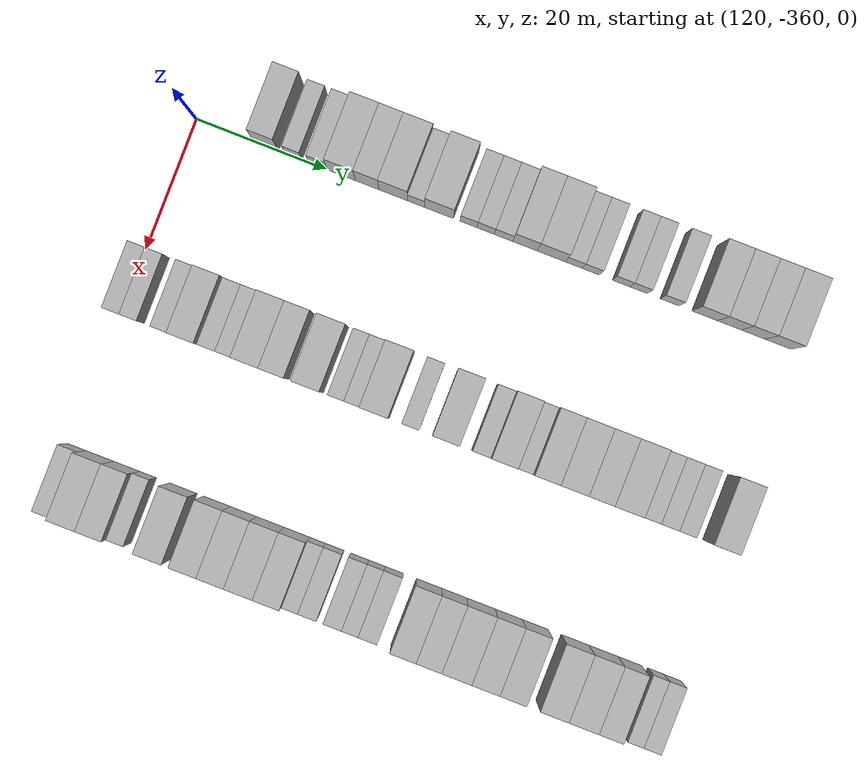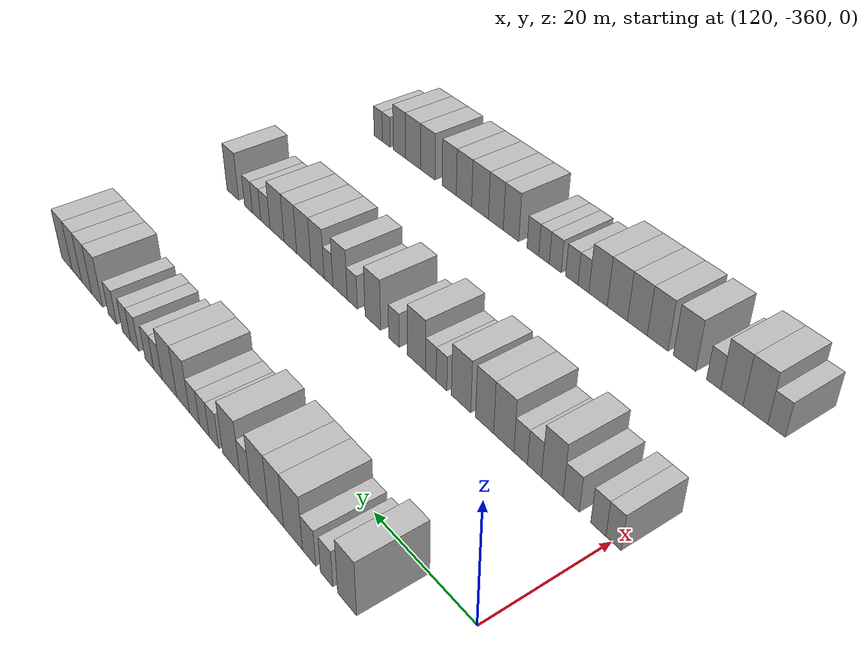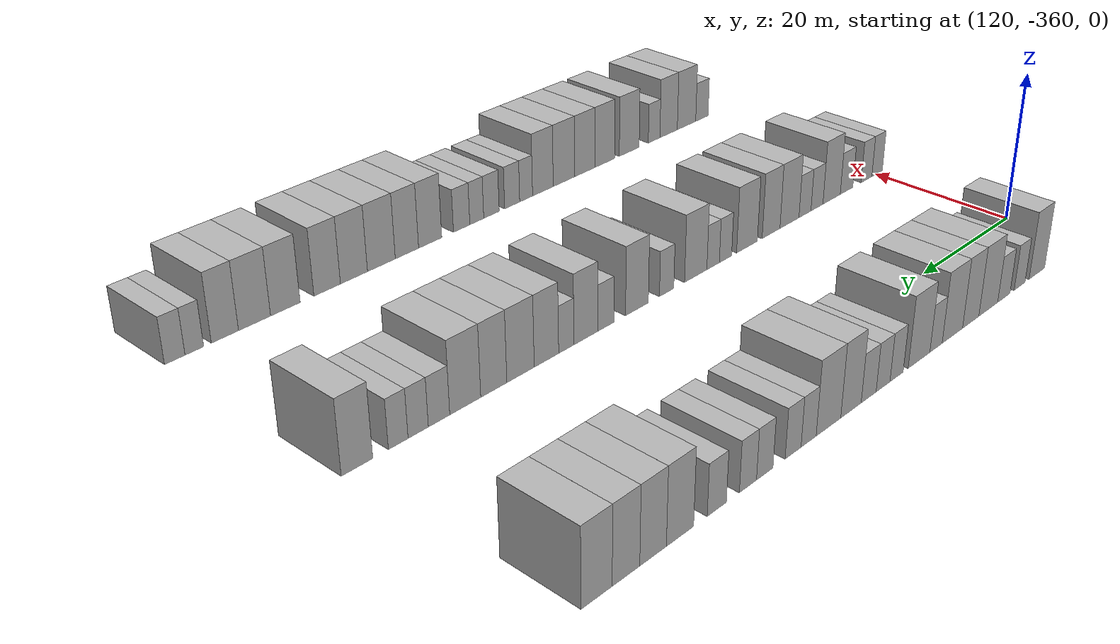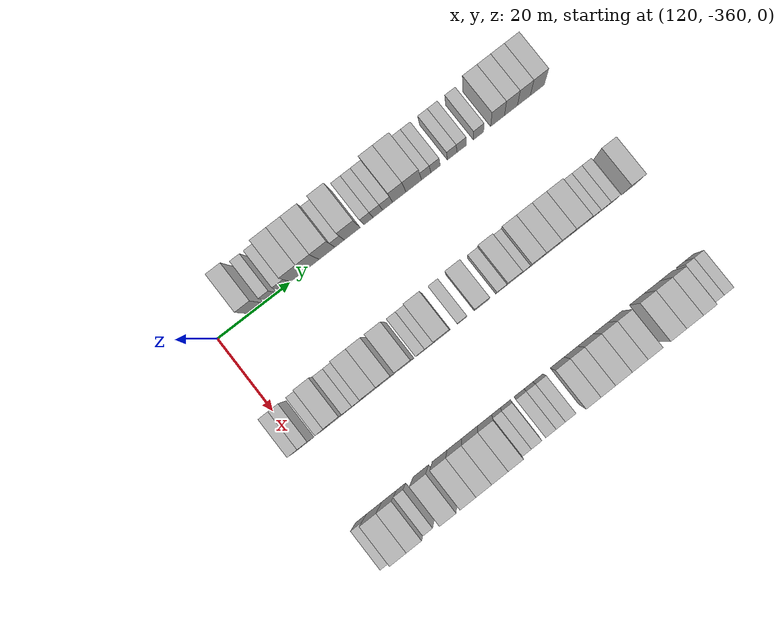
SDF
<sdf version="1.6">
 <world name="default">
  <model name="building_713">
   <static>1</static>
   <pose>115.0000 -349.2718 0 0.000000 0.000000 0.000000</pose>
   <link name="link">
    <pose>0 0 4.50 0 0 0</pose>
    <collision name="collision"><geometry><box><size>10.0000 3.8487 9.0000</size></box></geometry></collision>
    <visual name="visual">
     <cast_shadows>0</cast_shadows>
     <geometry><box><size>10.0000 3.8487 9.0000</size></box></geometry>
     <material>
      <script>
       <uri>model://HANNAS_wall/materials/scripts</uri>
       <uri>model://HANNAS_wall/materials/textures</uri>
       <name>vrc/HANNAS_wall</name>
      </script>
     </material>
    </visual>
   </link>
  </model>
  <model name="building_714">
   <static>1</static>
   <pose>115.0000 -345.0325 0 0.000000 0.000000 0.000000</pose>
   <link name="link">
    <pose>0 0 3.00 0 0 0</pose>
    <collision name="collision"><geometry><box><size>10.0000 2.6299 6.0000</size></box></geometry></collision>
    <visual name="visual">
     <cast_shadows>0</cast_shadows>
     <geometry><box><size>10.0000 2.6299 6.0000</size></box></geometry>
     <material>
      <script>
       <uri>model://HANNAS_wall/materials/scripts</uri>
       <uri>model://HANNAS_wall/materials/textures</uri>
       <name>vrc/HANNAS_wall</name>
      </script>
     </material>
    </visual>
   </link>
  </model>
  <model name="building_715">
   <static>1</static>
   <pose>115.0000 -341.2757 0 0.000000 0.000000 0.000000</pose>
   <link name="link">
    <pose>0 0 3.00 0 0 0</pose>
    <collision name="collision"><geometry><box><size>10.0000 2.8836 6.0000</size></box></geometry></collision>
    <visual name="visual">
     <cast_shadows>0</cast_shadows>
     <geometry><box><size>10.0000 2.8836 6.0000</size></box></geometry>
     <material>
      <script>
       <uri>model://HANNAS_wall/materials/scripts</uri>
       <uri>model://HANNAS_wall/materials/textures</uri>
       <name>vrc/HANNAS_wall</name>
      </script>
     </material>
    </visual>
   </link>
  </model>
  <model name="building_716">
   <static>1</static>
   <pose>115.0000 -337.6735 0 0.000000 0.000000 0.000000</pose>
   <link name="link">
    <pose>0 0 4.50 0 0 0</pose>
    <collision name="collision"><geometry><box><size>10.0000 4.3208 9.0000</size></box></geometry></collision>
    <visual name="visual">
     <cast_shadows>0</cast_shadows>
     <geometry><box><size>10.0000 4.3208 9.0000</size></box></geometry>
     <material>
      <script>
       <uri>model://HANNAS_wall/materials/scripts</uri>
       <uri>model://HANNAS_wall/materials/textures</uri>
       <name>vrc/HANNAS_wall</name>
      </script>
     </material>
    </visual>
   </link>
  </model>
  <model name="building_717">
   <static>1</static>
   <pose>115.0000 -333.7056 0 0.000000 0.000000 0.000000</pose>
   <link name="link">
    <pose>0 0 4.50 0 0 0</pose>
    <collision name="collision"><geometry><box><size>10.0000 3.6150 9.0000</size></box></geometry></collision>
    <visual name="visual">
     <cast_shadows>0</cast_shadows>
     <geometry><box><size>10.0000 3.6150 9.0000</size></box></geometry>
     <material>
      <script>
       <uri>model://HANNAS_wall/materials/scripts</uri>
       <uri>model://HANNAS_wall/materials/textures</uri>
       <name>vrc/HANNAS_wall</name>
      </script>
     </material>
    </visual>
   </link>
  </model>
  <model name="building_718">
   <static>1</static>
   <pose>115.0000 -329.7016 0 0.000000 0.000000 0.000000</pose>
   <link name="link">
    <pose>0 0 4.50 0 0 0</pose>
    <collision name="collision"><geometry><box><size>10.0000 4.3929 9.0000</size></box></geometry></collision>
    <visual name="visual">
     <cast_shadows>0</cast_shadows>
     <geometry><box><size>10.0000 4.3929 9.0000</size></box></geometry>
     <material>
      <script>
       <uri>model://HANNAS_wall/materials/scripts</uri>
       <uri>model://HANNAS_wall/materials/textures</uri>
       <name>vrc/HANNAS_wall</name>
      </script>
     </material>
    </visual>
   </link>
  </model>
  <model name="building_719">
   <static>1</static>
   <pose>115.0000 -326.2116 0 0.000000 0.000000 0.000000</pose>
   <link name="link">
    <pose>0 0 3.00 0 0 0</pose>
    <collision name="collision"><geometry><box><size>10.0000 2.5870 6.0000</size></box></geometry></collision>
    <visual name="visual">
     <cast_shadows>0</cast_shadows>
     <geometry><box><size>10.0000 2.5870 6.0000</size></box></geometry>
     <material>
      <script>
       <uri>model://HANNAS_wall/materials/scripts</uri>
       <uri>model://HANNAS_wall/materials/textures</uri>
       <name>vrc/HANNAS_wall</name>
      </script>
     </material>
    </visual>
   </link>
  </model>
  <model name="building_720">
   <static>1</static>
   <pose>115.0000 -322.7113 0 0.000000 0.000000 0.000000</pose>
   <link name="link">
    <pose>0 0 4.50 0 0 0</pose>
    <collision name="collision"><geometry><box><size>10.0000 4.4137 9.0000</size></box></geometry></collision>
    <visual name="visual">
     <cast_shadows>0</cast_shadows>
     <geometry><box><size>10.0000 4.4137 9.0000</size></box></geometry>
     <material>
      <script>
       <uri>model://HANNAS_wall/materials/scripts</uri>
       <uri>model://HANNAS_wall/materials/textures</uri>
       <name>vrc/HANNAS_wall</name>
      </script>
     </material>
    </visual>
   </link>
  </model>
  <model name="building_721">
   <static>1</static>
   <pose>115.0000 -318.2077 0 0.000000 0.000000 0.000000</pose>
   <link name="link">
    <pose>0 0 3.00 0 0 0</pose>
    <collision name="collision"><geometry><box><size>10.0000 2.5934 6.0000</size></box></geometry></collision>
    <visual name="visual">
     <cast_shadows>0</cast_shadows>
     <geometry><box><size>10.0000 2.5934 6.0000</size></box></geometry>
     <material>
      <script>
       <uri>model://HANNAS_wall/materials/scripts</uri>
       <uri>model://HANNAS_wall/materials/textures</uri>
       <name>vrc/HANNAS_wall</name>
      </script>
     </material>
    </visual>
   </link>
  </model>
  <model name="building_722">
   <static>1</static>
   <pose>115.0000 -315.5808 0 0.000000 0.000000 0.000000</pose>
   <link name="link">
    <pose>0 0 3.00 0 0 0</pose>
    <collision name="collision"><geometry><box><size>10.0000 2.6605 6.0000</size></box></geometry></collision>
    <visual name="visual">
     <cast_shadows>0</cast_shadows>
     <geometry><box><size>10.0000 2.6605 6.0000</size></box></geometry>
     <material>
      <script>
       <uri>model://HANNAS_wall/materials/scripts</uri>
       <uri>model://HANNAS_wall/materials/textures</uri>
       <name>vrc/HANNAS_wall</name>
      </script>
     </material>
    </visual>
   </link>
  </model>
  <model name="building_723">
   <static>1</static>
   <pose>115.0000 -312.8457 0 0.000000 0.000000 0.000000</pose>
   <link name="link">
    <pose>0 0 3.00 0 0 0</pose>
    <collision name="collision"><geometry><box><size>10.0000 2.8096 6.0000</size></box></geometry></collision>
    <visual name="visual">
     <cast_shadows>0</cast_shadows>
     <geometry><box><size>10.0000 2.8096 6.0000</size></box></geometry>
     <material>
      <script>
       <uri>model://HANNAS_wall/materials/scripts</uri>
       <uri>model://HANNAS_wall/materials/textures</uri>
       <name>vrc/HANNAS_wall</name>
      </script>
     </material>
    </visual>
   </link>
  </model>
  <model name="building_724">
   <static>1</static>
   <pose>115.0000 -309.5720 0 0.000000 0.000000 0.000000</pose>
   <link name="link">
    <pose>0 0 4.50 0 0 0</pose>
    <collision name="collision"><geometry><box><size>10.0000 3.7379 9.0000</size></box></geometry></collision>
    <visual name="visual">
     <cast_shadows>0</cast_shadows>
     <geometry><box><size>10.0000 3.7379 9.0000</size></box></geometry>
     <material>
      <script>
       <uri>model://HANNAS_wall/materials/scripts</uri>
       <uri>model://HANNAS_wall/materials/textures</uri>
       <name>vrc/HANNAS_wall</name>
      </script>
     </material>
    </visual>
   </link>
  </model>
  <model name="building_725">
   <static>1</static>
   <pose>115.0000 -305.5279 0 0.000000 0.000000 0.000000</pose>
   <link name="link">
    <pose>0 0 4.50 0 0 0</pose>
    <collision name="collision"><geometry><box><size>10.0000 4.3501 9.0000</size></box></geometry></collision>
    <visual name="visual">
     <cast_shadows>0</cast_shadows>
     <geometry><box><size>10.0000 4.3501 9.0000</size></box></geometry>
     <material>
      <script>
       <uri>model://HANNAS_wall/materials/scripts</uri>
       <uri>model://HANNAS_wall/materials/textures</uri>
       <name>vrc/HANNAS_wall</name>
      </script>
     </material>
    </visual>
   </link>
  </model>
  <model name="building_726">
   <static>1</static>
   <pose>115.0000 -302.0555 0 0.000000 0.000000 0.000000</pose>
   <link name="link">
    <pose>0 0 3.00 0 0 0</pose>
    <collision name="collision"><geometry><box><size>10.0000 2.5948 6.0000</size></box></geometry></collision>
    <visual name="visual">
     <cast_shadows>0</cast_shadows>
     <geometry><box><size>10.0000 2.5948 6.0000</size></box></geometry>
     <material>
      <script>
       <uri>model://HANNAS_wall/materials/scripts</uri>
       <uri>model://HANNAS_wall/materials/textures</uri>
       <name>vrc/HANNAS_wall</name>
      </script>
     </material>
    </visual>
   </link>
  </model>
  <model name="building_727">
   <static>1</static>
   <pose>115.0000 -299.4252 0 0.000000 0.000000 0.000000</pose>
   <link name="link">
    <pose>0 0 3.00 0 0 0</pose>
    <collision name="collision"><geometry><box><size>10.0000 2.6658 6.0000</size></box></geometry></collision>
    <visual name="visual">
     <cast_shadows>0</cast_shadows>
     <geometry><box><size>10.0000 2.6658 6.0000</size></box></geometry>
     <material>
      <script>
       <uri>model://HANNAS_wall/materials/scripts</uri>
       <uri>model://HANNAS_wall/materials/textures</uri>
       <name>vrc/HANNAS_wall</name>
      </script>
     </material>
    </visual>
   </link>
  </model>
  <model name="building_728">
   <static>1</static>
   <pose>115.0000 -294.7700 0 0.000000 0.000000 0.000000</pose>
   <link name="link">
    <pose>0 0 3.00 0 0 0</pose>
    <collision name="collision"><geometry><box><size>10.0000 2.6446 6.0000</size></box></geometry></collision>
    <visual name="visual">
     <cast_shadows>0</cast_shadows>
     <geometry><box><size>10.0000 2.6446 6.0000</size></box></geometry>
     <material>
      <script>
       <uri>model://HANNAS_wall/materials/scripts</uri>
       <uri>model://HANNAS_wall/materials/textures</uri>
       <name>vrc/HANNAS_wall</name>
      </script>
     </material>
    </visual>
   </link>
  </model>
  <model name="building_729">
   <static>1</static>
   <pose>115.0000 -292.1045 0 0.000000 0.000000 0.000000</pose>
   <link name="link">
    <pose>0 0 3.00 0 0 0</pose>
    <collision name="collision"><geometry><box><size>10.0000 2.6865 6.0000</size></box></geometry></collision>
    <visual name="visual">
     <cast_shadows>0</cast_shadows>
     <geometry><box><size>10.0000 2.6865 6.0000</size></box></geometry>
     <material>
      <script>
       <uri>model://HANNAS_wall/materials/scripts</uri>
       <uri>model://HANNAS_wall/materials/textures</uri>
       <name>vrc/HANNAS_wall</name>
      </script>
     </material>
    </visual>
   </link>
  </model>
  <model name="building_730">
   <static>1</static>
   <pose>115.0000 -287.3236 0 0.000000 0.000000 0.000000</pose>
   <link name="link">
    <pose>0 0 3.00 0 0 0</pose>
    <collision name="collision"><geometry><box><size>10.0000 2.8752 6.0000</size></box></geometry></collision>
    <visual name="visual">
     <cast_shadows>0</cast_shadows>
     <geometry><box><size>10.0000 2.8752 6.0000</size></box></geometry>
     <material>
      <script>
       <uri>model://HANNAS_wall/materials/scripts</uri>
       <uri>model://HANNAS_wall/materials/textures</uri>
       <name>vrc/HANNAS_wall</name>
      </script>
     </material>
    </visual>
   </link>
  </model>
  <model name="building_731">
   <static>1</static>
   <pose>115.0000 -281.9451 0 0.000000 0.000000 0.000000</pose>
   <link name="link">
    <pose>0 0 4.50 0 0 0</pose>
    <collision name="collision"><geometry><box><size>10.0000 3.8818 9.0000</size></box></geometry></collision>
    <visual name="visual">
     <cast_shadows>0</cast_shadows>
     <geometry><box><size>10.0000 3.8818 9.0000</size></box></geometry>
     <material>
      <script>
       <uri>model://HANNAS_wall/materials/scripts</uri>
       <uri>model://HANNAS_wall/materials/textures</uri>
       <name>vrc/HANNAS_wall</name>
      </script>
     </material>
    </visual>
   </link>
  </model>
  <model name="building_732">
   <static>1</static>
   <pose>115.0000 -278.1721 0 0.000000 0.000000 0.000000</pose>
   <link name="link">
    <pose>0 0 4.50 0 0 0</pose>
    <collision name="collision"><geometry><box><size>10.0000 3.6641 9.0000</size></box></geometry></collision>
    <visual name="visual">
     <cast_shadows>0</cast_shadows>
     <geometry><box><size>10.0000 3.6641 9.0000</size></box></geometry>
     <material>
      <script>
       <uri>model://HANNAS_wall/materials/scripts</uri>
       <uri>model://HANNAS_wall/materials/textures</uri>
       <name>vrc/HANNAS_wall</name>
      </script>
     </material>
    </visual>
   </link>
  </model>
  <model name="building_733">
   <static>1</static>
   <pose>115.0000 -274.5097 0 0.000000 0.000000 0.000000</pose>
   <link name="link">
    <pose>0 0 4.50 0 0 0</pose>
    <collision name="collision"><geometry><box><size>10.0000 3.6608 9.0000</size></box></geometry></collision>
    <visual name="visual">
     <cast_shadows>0</cast_shadows>
     <geometry><box><size>10.0000 3.6608 9.0000</size></box></geometry>
     <material>
      <script>
       <uri>model://HANNAS_wall/materials/scripts</uri>
       <uri>model://HANNAS_wall/materials/textures</uri>
       <name>vrc/HANNAS_wall</name>
      </script>
     </material>
    </visual>
   </link>
  </model>
  <model name="building_734">
   <static>1</static>
   <pose>115.0000 -270.6856 0 0.000000 0.000000 0.000000</pose>
   <link name="link">
    <pose>0 0 4.50 0 0 0</pose>
    <collision name="collision"><geometry><box><size>10.0000 3.9873 9.0000</size></box></geometry></collision>
    <visual name="visual">
     <cast_shadows>0</cast_shadows>
     <geometry><box><size>10.0000 3.9873 9.0000</size></box></geometry>
     <material>
      <script>
       <uri>model://HANNAS_wall/materials/scripts</uri>
       <uri>model://HANNAS_wall/materials/textures</uri>
       <name>vrc/HANNAS_wall</name>
      </script>
     </material>
    </visual>
   </link>
  </model>
  <model name="building_943">
   <static>1</static>
   <pose>145.0000 -360.2966 0 0.000000 0.000000 0.000000</pose>
   <link name="link">
    <pose>0 0 3.00 0 0 0</pose>
    <collision name="collision"><geometry><box><size>10.0000 2.6022 6.0000</size></box></geometry></collision>
    <visual name="visual">
     <cast_shadows>0</cast_shadows>
     <geometry><box><size>10.0000 2.6022 6.0000</size></box></geometry>
     <material>
      <script>
       <uri>model://HANNAS_wall/materials/scripts</uri>
       <uri>model://HANNAS_wall/materials/textures</uri>
       <name>vrc/HANNAS_wall</name>
      </script>
     </material>
    </visual>
   </link>
  </model>
  <model name="building_944">
   <static>1</static>
   <pose>145.0000 -357.6795 0 0.000000 0.000000 0.000000</pose>
   <link name="link">
    <pose>0 0 3.00 0 0 0</pose>
    <collision name="collision"><geometry><box><size>10.0000 2.6321 6.0000</size></box></geometry></collision>
    <visual name="visual">
     <cast_shadows>0</cast_shadows>
     <geometry><box><size>10.0000 2.6321 6.0000</size></box></geometry>
     <material>
      <script>
       <uri>model://HANNAS_wall/materials/scripts</uri>
       <uri>model://HANNAS_wall/materials/textures</uri>
       <name>vrc/HANNAS_wall</name>
      </script>
     </material>
    </visual>
   </link>
  </model>
  <model name="building_945">
   <static>1</static>
   <pose>145.0000 -352.8787 0 0.000000 0.000000 0.000000</pose>
   <link name="link">
    <pose>0 0 3.00 0 0 0</pose>
    <collision name="collision"><geometry><box><size>10.0000 2.9694 6.0000</size></box></geometry></collision>
    <visual name="visual">
     <cast_shadows>0</cast_shadows>
     <geometry><box><size>10.0000 2.9694 6.0000</size></box></geometry>
     <material>
      <script>
       <uri>model://HANNAS_wall/materials/scripts</uri>
       <uri>model://HANNAS_wall/materials/textures</uri>
       <name>vrc/HANNAS_wall</name>
      </script>
     </material>
    </visual>
   </link>
  </model>
  <model name="building_946">
   <static>1</static>
   <pose>145.0000 -349.3877 0 0.000000 0.000000 0.000000</pose>
   <link name="link">
    <pose>0 0 4.50 0 0 0</pose>
    <collision name="collision"><geometry><box><size>10.0000 4.0126 9.0000</size></box></geometry></collision>
    <visual name="visual">
     <cast_shadows>0</cast_shadows>
     <geometry><box><size>10.0000 4.0126 9.0000</size></box></geometry>
     <material>
      <script>
       <uri>model://HANNAS_wall/materials/scripts</uri>
       <uri>model://HANNAS_wall/materials/textures</uri>
       <name>vrc/HANNAS_wall</name>
      </script>
     </material>
    </visual>
   </link>
  </model>
  <model name="building_947">
   <static>1</static>
   <pose>145.0000 -346.0245 0 0.000000 0.000000 0.000000</pose>
   <link name="link">
    <pose>0 0 3.00 0 0 0</pose>
    <collision name="collision"><geometry><box><size>10.0000 2.7140 6.0000</size></box></geometry></collision>
    <visual name="visual">
     <cast_shadows>0</cast_shadows>
     <geometry><box><size>10.0000 2.7140 6.0000</size></box></geometry>
     <material>
      <script>
       <uri>model://HANNAS_wall/materials/scripts</uri>
       <uri>model://HANNAS_wall/materials/textures</uri>
       <name>vrc/HANNAS_wall</name>
      </script>
     </material>
    </visual>
   </link>
  </model>
  <model name="building_948">
   <static>1</static>
   <pose>145.0000 -343.3308 0 0.000000 0.000000 0.000000</pose>
   <link name="link">
    <pose>0 0 3.00 0 0 0</pose>
    <collision name="collision"><geometry><box><size>10.0000 2.6733 6.0000</size></box></geometry></collision>
    <visual name="visual">
     <cast_shadows>0</cast_shadows>
     <geometry><box><size>10.0000 2.6733 6.0000</size></box></geometry>
     <material>
      <script>
       <uri>model://HANNAS_wall/materials/scripts</uri>
       <uri>model://HANNAS_wall/materials/textures</uri>
       <name>vrc/HANNAS_wall</name>
      </script>
     </material>
    </visual>
   </link>
  </model>
  <model name="building_949">
   <static>1</static>
   <pose>145.0000 -339.9297 0 0.000000 0.000000 0.000000</pose>
   <link name="link">
    <pose>0 0 4.50 0 0 0</pose>
    <collision name="collision"><geometry><box><size>10.0000 4.1289 9.0000</size></box></geometry></collision>
    <visual name="visual">
     <cast_shadows>0</cast_shadows>
     <geometry><box><size>10.0000 4.1289 9.0000</size></box></geometry>
     <material>
      <script>
       <uri>model://HANNAS_wall/materials/scripts</uri>
       <uri>model://HANNAS_wall/materials/textures</uri>
       <name>vrc/HANNAS_wall</name>
      </script>
     </material>
    </visual>
   </link>
  </model>
  <model name="building_950">
   <static>1</static>
   <pose>145.0000 -335.9802 0 0.000000 0.000000 0.000000</pose>
   <link name="link">
    <pose>0 0 4.50 0 0 0</pose>
    <collision name="collision"><geometry><box><size>10.0000 3.7701 9.0000</size></box></geometry></collision>
    <visual name="visual">
     <cast_shadows>0</cast_shadows>
     <geometry><box><size>10.0000 3.7701 9.0000</size></box></geometry>
     <material>
      <script>
       <uri>model://HANNAS_wall/materials/scripts</uri>
       <uri>model://HANNAS_wall/materials/textures</uri>
       <name>vrc/HANNAS_wall</name>
      </script>
     </material>
    </visual>
   </link>
  </model>
  <model name="building_951">
   <static>1</static>
   <pose>145.0000 -330.9729 0 0.000000 0.000000 0.000000</pose>
   <link name="link">
    <pose>0 0 4.50 0 0 0</pose>
    <collision name="collision"><geometry><box><size>10.0000 4.2445 9.0000</size></box></geometry></collision>
    <visual name="visual">
     <cast_shadows>0</cast_shadows>
     <geometry><box><size>10.0000 4.2445 9.0000</size></box></geometry>
     <material>
      <script>
       <uri>model://HANNAS_wall/materials/scripts</uri>
       <uri>model://HANNAS_wall/materials/textures</uri>
       <name>vrc/HANNAS_wall</name>
      </script>
     </material>
    </visual>
   </link>
  </model>
  <model name="building_952">
   <static>1</static>
   <pose>145.0000 -326.6328 0 0.000000 0.000000 0.000000</pose>
   <link name="link">
    <pose>0 0 3.00 0 0 0</pose>
    <collision name="collision"><geometry><box><size>10.0000 2.4357 6.0000</size></box></geometry></collision>
    <visual name="visual">
     <cast_shadows>0</cast_shadows>
     <geometry><box><size>10.0000 2.4357 6.0000</size></box></geometry>
     <material>
      <script>
       <uri>model://HANNAS_wall/materials/scripts</uri>
       <uri>model://HANNAS_wall/materials/textures</uri>
       <name>vrc/HANNAS_wall</name>
      </script>
     </material>
    </visual>
   </link>
  </model>
  <model name="building_953">
   <static>1</static>
   <pose>145.0000 -324.1994 0 0.000000 0.000000 0.000000</pose>
   <link name="link">
    <pose>0 0 3.00 0 0 0</pose>
    <collision name="collision"><geometry><box><size>10.0000 2.4311 6.0000</size></box></geometry></collision>
    <visual name="visual">
     <cast_shadows>0</cast_shadows>
     <geometry><box><size>10.0000 2.4311 6.0000</size></box></geometry>
     <material>
      <script>
       <uri>model://HANNAS_wall/materials/scripts</uri>
       <uri>model://HANNAS_wall/materials/textures</uri>
       <name>vrc/HANNAS_wall</name>
      </script>
     </material>
    </visual>
   </link>
  </model>
  <model name="building_954">
   <static>1</static>
   <pose>145.0000 -320.8631 0 0.000000 0.000000 0.000000</pose>
   <link name="link">
    <pose>0 0 4.50 0 0 0</pose>
    <collision name="collision"><geometry><box><size>10.0000 4.2415 9.0000</size></box></geometry></collision>
    <visual name="visual">
     <cast_shadows>0</cast_shadows>
     <geometry><box><size>10.0000 4.2415 9.0000</size></box></geometry>
     <material>
      <script>
       <uri>model://HANNAS_wall/materials/scripts</uri>
       <uri>model://HANNAS_wall/materials/textures</uri>
       <name>vrc/HANNAS_wall</name>
      </script>
     </material>
    </visual>
   </link>
  </model>
  <model name="building_955">
   <static>1</static>
   <pose>145.0000 -315.4333 0 0.000000 0.000000 0.000000</pose>
   <link name="link">
    <pose>0 0 3.00 0 0 0</pose>
    <collision name="collision"><geometry><box><size>10.0000 2.6180 6.0000</size></box></geometry></collision>
    <visual name="visual">
     <cast_shadows>0</cast_shadows>
     <geometry><box><size>10.0000 2.6180 6.0000</size></box></geometry>
     <material>
      <script>
       <uri>model://HANNAS_wall/materials/scripts</uri>
       <uri>model://HANNAS_wall/materials/textures</uri>
       <name>vrc/HANNAS_wall</name>
      </script>
     </material>
    </visual>
   </link>
  </model>
  <model name="building_956">
   <static>1</static>
   <pose>145.0000 -310.1233 0 0.000000 0.000000 0.000000</pose>
   <link name="link">
    <pose>0 0 4.50 0 0 0</pose>
    <collision name="collision"><geometry><box><size>10.0000 4.0022 9.0000</size></box></geometry></collision>
    <visual name="visual">
     <cast_shadows>0</cast_shadows>
     <geometry><box><size>10.0000 4.0022 9.0000</size></box></geometry>
     <material>
      <script>
       <uri>model://HANNAS_wall/materials/scripts</uri>
       <uri>model://HANNAS_wall/materials/textures</uri>
       <name>vrc/HANNAS_wall</name>
      </script>
     </material>
    </visual>
   </link>
  </model>
  <model name="building_957">
   <static>1</static>
   <pose>145.0000 -304.7585 0 0.000000 0.000000 0.000000</pose>
   <link name="link">
    <pose>0 0 3.00 0 0 0</pose>
    <collision name="collision"><geometry><box><size>10.0000 2.7274 6.0000</size></box></geometry></collision>
    <visual name="visual">
     <cast_shadows>0</cast_shadows>
     <geometry><box><size>10.0000 2.7274 6.0000</size></box></geometry>
     <material>
      <script>
       <uri>model://HANNAS_wall/materials/scripts</uri>
       <uri>model://HANNAS_wall/materials/textures</uri>
       <name>vrc/HANNAS_wall</name>
      </script>
     </material>
    </visual>
   </link>
  </model>
  <model name="building_958">
   <static>1</static>
   <pose>145.0000 -301.4330 0 0.000000 0.000000 0.000000</pose>
   <link name="link">
    <pose>0 0 4.50 0 0 0</pose>
    <collision name="collision"><geometry><box><size>10.0000 3.9236 9.0000</size></box></geometry></collision>
    <visual name="visual">
     <cast_shadows>0</cast_shadows>
     <geometry><box><size>10.0000 3.9236 9.0000</size></box></geometry>
     <material>
      <script>
       <uri>model://HANNAS_wall/materials/scripts</uri>
       <uri>model://HANNAS_wall/materials/textures</uri>
       <name>vrc/HANNAS_wall</name>
      </script>
     </material>
    </visual>
   </link>
  </model>
  <model name="building_959">
   <static>1</static>
   <pose>145.0000 -298.2555 0 0.000000 0.000000 0.000000</pose>
   <link name="link">
    <pose>0 0 3.00 0 0 0</pose>
    <collision name="collision"><geometry><box><size>10.0000 2.4314 6.0000</size></box></geometry></collision>
    <visual name="visual">
     <cast_shadows>0</cast_shadows>
     <geometry><box><size>10.0000 2.4314 6.0000</size></box></geometry>
     <material>
      <script>
       <uri>model://HANNAS_wall/materials/scripts</uri>
       <uri>model://HANNAS_wall/materials/textures</uri>
       <name>vrc/HANNAS_wall</name>
      </script>
     </material>
    </visual>
   </link>
  </model>
  <model name="building_960">
   <static>1</static>
   <pose>145.0000 -295.1308 0 0.000000 0.000000 0.000000</pose>
   <link name="link">
    <pose>0 0 4.50 0 0 0</pose>
    <collision name="collision"><geometry><box><size>10.0000 3.8180 9.0000</size></box></geometry></collision>
    <visual name="visual">
     <cast_shadows>0</cast_shadows>
     <geometry><box><size>10.0000 3.8180 9.0000</size></box></geometry>
     <material>
      <script>
       <uri>model://HANNAS_wall/materials/scripts</uri>
       <uri>model://HANNAS_wall/materials/textures</uri>
       <name>vrc/HANNAS_wall</name>
      </script>
     </material>
    </visual>
   </link>
  </model>
  <model name="building_961">
   <static>1</static>
   <pose>145.0000 -291.1480 0 0.000000 0.000000 0.000000</pose>
   <link name="link">
    <pose>0 0 4.50 0 0 0</pose>
    <collision name="collision"><geometry><box><size>10.0000 4.1475 9.0000</size></box></geometry></collision>
    <visual name="visual">
     <cast_shadows>0</cast_shadows>
     <geometry><box><size>10.0000 4.1475 9.0000</size></box></geometry>
     <material>
      <script>
       <uri>model://HANNAS_wall/materials/scripts</uri>
       <uri>model://HANNAS_wall/materials/textures</uri>
       <name>vrc/HANNAS_wall</name>
      </script>
     </material>
    </visual>
   </link>
  </model>
  <model name="building_962">
   <static>1</static>
   <pose>145.0000 -287.1610 0 0.000000 0.000000 0.000000</pose>
   <link name="link">
    <pose>0 0 4.50 0 0 0</pose>
    <collision name="collision"><geometry><box><size>10.0000 3.8265 9.0000</size></box></geometry></collision>
    <visual name="visual">
     <cast_shadows>0</cast_shadows>
     <geometry><box><size>10.0000 3.8265 9.0000</size></box></geometry>
     <material>
      <script>
       <uri>model://HANNAS_wall/materials/scripts</uri>
       <uri>model://HANNAS_wall/materials/textures</uri>
       <name>vrc/HANNAS_wall</name>
      </script>
     </material>
    </visual>
   </link>
  </model>
  <model name="building_963">
   <static>1</static>
   <pose>145.0000 -283.0524 0 0.000000 0.000000 0.000000</pose>
   <link name="link">
    <pose>0 0 4.50 0 0 0</pose>
    <collision name="collision"><geometry><box><size>10.0000 4.3908 9.0000</size></box></geometry></collision>
    <visual name="visual">
     <cast_shadows>0</cast_shadows>
     <geometry><box><size>10.0000 4.3908 9.0000</size></box></geometry>
     <material>
      <script>
       <uri>model://HANNAS_wall/materials/scripts</uri>
       <uri>model://HANNAS_wall/materials/textures</uri>
       <name>vrc/HANNAS_wall</name>
      </script>
     </material>
    </visual>
   </link>
  </model>
  <model name="building_964">
   <static>1</static>
   <pose>145.0000 -279.3878 0 0.000000 0.000000 0.000000</pose>
   <link name="link">
    <pose>0 0 3.00 0 0 0</pose>
    <collision name="collision"><geometry><box><size>10.0000 2.9383 6.0000</size></box></geometry></collision>
    <visual name="visual">
     <cast_shadows>0</cast_shadows>
     <geometry><box><size>10.0000 2.9383 6.0000</size></box></geometry>
     <material>
      <script>
       <uri>model://HANNAS_wall/materials/scripts</uri>
       <uri>model://HANNAS_wall/materials/textures</uri>
       <name>vrc/HANNAS_wall</name>
      </script>
     </material>
    </visual>
   </link>
  </model>
  <model name="building_965">
   <static>1</static>
   <pose>145.0000 -276.5594 0 0.000000 0.000000 0.000000</pose>
   <link name="link">
    <pose>0 0 3.00 0 0 0</pose>
    <collision name="collision"><geometry><box><size>10.0000 2.7186 6.0000</size></box></geometry></collision>
    <visual name="visual">
     <cast_shadows>0</cast_shadows>
     <geometry><box><size>10.0000 2.7186 6.0000</size></box></geometry>
     <material>
      <script>
       <uri>model://HANNAS_wall/materials/scripts</uri>
       <uri>model://HANNAS_wall/materials/textures</uri>
       <name>vrc/HANNAS_wall</name>
      </script>
     </material>
    </visual>
   </link>
  </model>
  <model name="building_966">
   <static>1</static>
   <pose>145.0000 -273.9099 0 0.000000 0.000000 0.000000</pose>
   <link name="link">
    <pose>0 0 3.00 0 0 0</pose>
    <collision name="collision"><geometry><box><size>10.0000 2.5804 6.0000</size></box></geometry></collision>
    <visual name="visual">
     <cast_shadows>0</cast_shadows>
     <geometry><box><size>10.0000 2.5804 6.0000</size></box></geometry>
     <material>
      <script>
       <uri>model://HANNAS_wall/materials/scripts</uri>
       <uri>model://HANNAS_wall/materials/textures</uri>
       <name>vrc/HANNAS_wall</name>
      </script>
     </material>
    </visual>
   </link>
  </model>
  <model name="building_967">
   <static>1</static>
   <pose>145.0000 -268.6438 0 0.000000 0.000000 0.000000</pose>
   <link name="link">
    <pose>0 0 4.50 0 0 0</pose>
    <collision name="collision"><geometry><box><size>10.0000 3.9518 9.0000</size></box></geometry></collision>
    <visual name="visual">
     <cast_shadows>0</cast_shadows>
     <geometry><box><size>10.0000 3.9518 9.0000</size></box></geometry>
     <material>
      <script>
       <uri>model://HANNAS_wall/materials/scripts</uri>
       <uri>model://HANNAS_wall/materials/textures</uri>
       <name>vrc/HANNAS_wall</name>
      </script>
     </material>
    </visual>
   </link>
  </model>
  <model name="building_1174">
   <static>1</static>
   <pose>175.0000 -358.9600 0 0.000000 0.000000 0.000000</pose>
   <link name="link">
    <pose>0 0 3.00 0 0 0</pose>
    <collision name="collision"><geometry><box><size>10.0000 2.9193 6.0000</size></box></geometry></collision>
    <visual name="visual">
     <cast_shadows>0</cast_shadows>
     <geometry><box><size>10.0000 2.9193 6.0000</size></box></geometry>
     <material>
      <script>
       <uri>model://HANNAS_wall/materials/scripts</uri>
       <uri>model://HANNAS_wall/materials/textures</uri>
       <name>vrc/HANNAS_wall</name>
      </script>
     </material>
    </visual>
   </link>
  </model>
  <model name="building_1175">
   <static>1</static>
   <pose>175.0000 -355.3679 0 0.000000 0.000000 0.000000</pose>
   <link name="link">
    <pose>0 0 4.50 0 0 0</pose>
    <collision name="collision"><geometry><box><size>10.0000 4.2649 9.0000</size></box></geometry></collision>
    <visual name="visual">
     <cast_shadows>0</cast_shadows>
     <geometry><box><size>10.0000 4.2649 9.0000</size></box></geometry>
     <material>
      <script>
       <uri>model://HANNAS_wall/materials/scripts</uri>
       <uri>model://HANNAS_wall/materials/textures</uri>
       <name>vrc/HANNAS_wall</name>
      </script>
     </material>
    </visual>
   </link>
  </model>
  <model name="building_1176">
   <static>1</static>
   <pose>175.0000 -351.2719 0 0.000000 0.000000 0.000000</pose>
   <link name="link">
    <pose>0 0 4.50 0 0 0</pose>
    <collision name="collision"><geometry><box><size>10.0000 3.9270 9.0000</size></box></geometry></collision>
    <visual name="visual">
     <cast_shadows>0</cast_shadows>
     <geometry><box><size>10.0000 3.9270 9.0000</size></box></geometry>
     <material>
      <script>
       <uri>model://HANNAS_wall/materials/scripts</uri>
       <uri>model://HANNAS_wall/materials/textures</uri>
       <name>vrc/HANNAS_wall</name>
      </script>
     </material>
    </visual>
   </link>
  </model>
  <model name="building_1177">
   <static>1</static>
   <pose>175.0000 -348.0223 0 0.000000 0.000000 0.000000</pose>
   <link name="link">
    <pose>0 0 3.00 0 0 0</pose>
    <collision name="collision"><geometry><box><size>10.0000 2.5723 6.0000</size></box></geometry></collision>
    <visual name="visual">
     <cast_shadows>0</cast_shadows>
     <geometry><box><size>10.0000 2.5723 6.0000</size></box></geometry>
     <material>
      <script>
       <uri>model://HANNAS_wall/materials/scripts</uri>
       <uri>model://HANNAS_wall/materials/textures</uri>
       <name>vrc/HANNAS_wall</name>
      </script>
     </material>
    </visual>
   </link>
  </model>
  <model name="building_1178">
   <static>1</static>
   <pose>175.0000 -342.6099 0 0.000000 0.000000 0.000000</pose>
   <link name="link">
    <pose>0 0 4.50 0 0 0</pose>
    <collision name="collision"><geometry><box><size>10.0000 4.2524 9.0000</size></box></geometry></collision>
    <visual name="visual">
     <cast_shadows>0</cast_shadows>
     <geometry><box><size>10.0000 4.2524 9.0000</size></box></geometry>
     <material>
      <script>
       <uri>model://HANNAS_wall/materials/scripts</uri>
       <uri>model://HANNAS_wall/materials/textures</uri>
       <name>vrc/HANNAS_wall</name>
      </script>
     </material>
    </visual>
   </link>
  </model>
  <model name="building_1179">
   <static>1</static>
   <pose>175.0000 -337.4300 0 0.000000 0.000000 0.000000</pose>
   <link name="link">
    <pose>0 0 4.50 0 0 0</pose>
    <collision name="collision"><geometry><box><size>10.0000 4.1074 9.0000</size></box></geometry></collision>
    <visual name="visual">
     <cast_shadows>0</cast_shadows>
     <geometry><box><size>10.0000 4.1074 9.0000</size></box></geometry>
     <material>
      <script>
       <uri>model://HANNAS_wall/materials/scripts</uri>
       <uri>model://HANNAS_wall/materials/textures</uri>
       <name>vrc/HANNAS_wall</name>
      </script>
     </material>
    </visual>
   </link>
  </model>
  <model name="building_1180">
   <static>1</static>
   <pose>175.0000 -333.3565 0 0.000000 0.000000 0.000000</pose>
   <link name="link">
    <pose>0 0 4.50 0 0 0</pose>
    <collision name="collision"><geometry><box><size>10.0000 4.0397 9.0000</size></box></geometry></collision>
    <visual name="visual">
     <cast_shadows>0</cast_shadows>
     <geometry><box><size>10.0000 4.0397 9.0000</size></box></geometry>
     <material>
      <script>
       <uri>model://HANNAS_wall/materials/scripts</uri>
       <uri>model://HANNAS_wall/materials/textures</uri>
       <name>vrc/HANNAS_wall</name>
      </script>
     </material>
    </visual>
   </link>
  </model>
  <model name="building_1181">
   <static>1</static>
   <pose>175.0000 -329.2071 0 0.000000 0.000000 0.000000</pose>
   <link name="link">
    <pose>0 0 4.50 0 0 0</pose>
    <collision name="collision"><geometry><box><size>10.0000 4.2592 9.0000</size></box></geometry></collision>
    <visual name="visual">
     <cast_shadows>0</cast_shadows>
     <geometry><box><size>10.0000 4.2592 9.0000</size></box></geometry>
     <material>
      <script>
       <uri>model://HANNAS_wall/materials/scripts</uri>
       <uri>model://HANNAS_wall/materials/textures</uri>
       <name>vrc/HANNAS_wall</name>
      </script>
     </material>
    </visual>
   </link>
  </model>
  <model name="building_1182">
   <static>1</static>
   <pose>175.0000 -325.0932 0 0.000000 0.000000 0.000000</pose>
   <link name="link">
    <pose>0 0 4.50 0 0 0</pose>
    <collision name="collision"><geometry><box><size>10.0000 3.9687 9.0000</size></box></geometry></collision>
    <visual name="visual">
     <cast_shadows>0</cast_shadows>
     <geometry><box><size>10.0000 3.9687 9.0000</size></box></geometry>
     <material>
      <script>
       <uri>model://HANNAS_wall/materials/scripts</uri>
       <uri>model://HANNAS_wall/materials/textures</uri>
       <name>vrc/HANNAS_wall</name>
      </script>
     </material>
    </visual>
   </link>
  </model>
  <model name="building_1183">
   <static>1</static>
   <pose>175.0000 -321.8997 0 0.000000 0.000000 0.000000</pose>
   <link name="link">
    <pose>0 0 3.00 0 0 0</pose>
    <collision name="collision"><geometry><box><size>10.0000 2.4184 6.0000</size></box></geometry></collision>
    <visual name="visual">
     <cast_shadows>0</cast_shadows>
     <geometry><box><size>10.0000 2.4184 6.0000</size></box></geometry>
     <material>
      <script>
       <uri>model://HANNAS_wall/materials/scripts</uri>
       <uri>model://HANNAS_wall/materials/textures</uri>
       <name>vrc/HANNAS_wall</name>
      </script>
     </material>
    </visual>
   </link>
  </model>
  <model name="building_1184">
   <static>1</static>
   <pose>175.0000 -319.2989 0 0.000000 0.000000 0.000000</pose>
   <link name="link">
    <pose>0 0 3.00 0 0 0</pose>
    <collision name="collision"><geometry><box><size>10.0000 2.7831 6.0000</size></box></geometry></collision>
    <visual name="visual">
     <cast_shadows>0</cast_shadows>
     <geometry><box><size>10.0000 2.7831 6.0000</size></box></geometry>
     <material>
      <script>
       <uri>model://HANNAS_wall/materials/scripts</uri>
       <uri>model://HANNAS_wall/materials/textures</uri>
       <name>vrc/HANNAS_wall</name>
      </script>
     </material>
    </visual>
   </link>
  </model>
  <model name="building_1185">
   <static>1</static>
   <pose>175.0000 -315.5177 0 0.000000 0.000000 0.000000</pose>
   <link name="link">
    <pose>0 0 3.00 0 0 0</pose>
    <collision name="collision"><geometry><box><size>10.0000 2.7793 6.0000</size></box></geometry></collision>
    <visual name="visual">
     <cast_shadows>0</cast_shadows>
     <geometry><box><size>10.0000 2.7793 6.0000</size></box></geometry>
     <material>
      <script>
       <uri>model://HANNAS_wall/materials/scripts</uri>
       <uri>model://HANNAS_wall/materials/textures</uri>
       <name>vrc/HANNAS_wall</name>
      </script>
     </material>
    </visual>
   </link>
  </model>
  <model name="building_1186">
   <static>1</static>
   <pose>175.0000 -312.8941 0 0.000000 0.000000 0.000000</pose>
   <link name="link">
    <pose>0 0 3.00 0 0 0</pose>
    <collision name="collision"><geometry><box><size>10.0000 2.4677 6.0000</size></box></geometry></collision>
    <visual name="visual">
     <cast_shadows>0</cast_shadows>
     <geometry><box><size>10.0000 2.4677 6.0000</size></box></geometry>
     <material>
      <script>
       <uri>model://HANNAS_wall/materials/scripts</uri>
       <uri>model://HANNAS_wall/materials/textures</uri>
       <name>vrc/HANNAS_wall</name>
      </script>
     </material>
    </visual>
   </link>
  </model>
  <model name="building_1187">
   <static>1</static>
   <pose>175.0000 -310.2408 0 0.000000 0.000000 0.000000</pose>
   <link name="link">
    <pose>0 0 3.00 0 0 0</pose>
    <collision name="collision"><geometry><box><size>10.0000 2.8390 6.0000</size></box></geometry></collision>
    <visual name="visual">
     <cast_shadows>0</cast_shadows>
     <geometry><box><size>10.0000 2.8390 6.0000</size></box></geometry>
     <material>
      <script>
       <uri>model://HANNAS_wall/materials/scripts</uri>
       <uri>model://HANNAS_wall/materials/textures</uri>
       <name>vrc/HANNAS_wall</name>
      </script>
     </material>
    </visual>
   </link>
  </model>
  <model name="building_1188">
   <static>1</static>
   <pose>175.0000 -304.8817 0 0.000000 0.000000 0.000000</pose>
   <link name="link">
    <pose>0 0 4.50 0 0 0</pose>
    <collision name="collision"><geometry><box><size>10.0000 3.8792 9.0000</size></box></geometry></collision>
    <visual name="visual">
     <cast_shadows>0</cast_shadows>
     <geometry><box><size>10.0000 3.8792 9.0000</size></box></geometry>
     <material>
      <script>
       <uri>model://HANNAS_wall/materials/scripts</uri>
       <uri>model://HANNAS_wall/materials/textures</uri>
       <name>vrc/HANNAS_wall</name>
      </script>
     </material>
    </visual>
   </link>
  </model>
  <model name="building_1189">
   <static>1</static>
   <pose>175.0000 -301.0407 0 0.000000 0.000000 0.000000</pose>
   <link name="link">
    <pose>0 0 4.50 0 0 0</pose>
    <collision name="collision"><geometry><box><size>10.0000 3.8027 9.0000</size></box></geometry></collision>
    <visual name="visual">
     <cast_shadows>0</cast_shadows>
     <geometry><box><size>10.0000 3.8027 9.0000</size></box></geometry>
     <material>
      <script>
       <uri>model://HANNAS_wall/materials/scripts</uri>
       <uri>model://HANNAS_wall/materials/textures</uri>
       <name>vrc/HANNAS_wall</name>
      </script>
     </material>
    </visual>
   </link>
  </model>
  <model name="building_1190">
   <static>1</static>
   <pose>175.0000 -296.9372 0 0.000000 0.000000 0.000000</pose>
   <link name="link">
    <pose>0 0 4.50 0 0 0</pose>
    <collision name="collision"><geometry><box><size>10.0000 4.4044 9.0000</size></box></geometry></collision>
    <visual name="visual">
     <cast_shadows>0</cast_shadows>
     <geometry><box><size>10.0000 4.4044 9.0000</size></box></geometry>
     <material>
      <script>
       <uri>model://HANNAS_wall/materials/scripts</uri>
       <uri>model://HANNAS_wall/materials/textures</uri>
       <name>vrc/HANNAS_wall</name>
      </script>
     </material>
    </visual>
   </link>
  </model>
  <model name="building_1191">
   <static>1</static>
   <pose>175.0000 -292.6580 0 0.000000 0.000000 0.000000</pose>
   <link name="link">
    <pose>0 0 4.50 0 0 0</pose>
    <collision name="collision"><geometry><box><size>10.0000 4.1541 9.0000</size></box></geometry></collision>
    <visual name="visual">
     <cast_shadows>0</cast_shadows>
     <geometry><box><size>10.0000 4.1541 9.0000</size></box></geometry>
     <material>
      <script>
       <uri>model://HANNAS_wall/materials/scripts</uri>
       <uri>model://HANNAS_wall/materials/textures</uri>
       <name>vrc/HANNAS_wall</name>
      </script>
     </material>
    </visual>
   </link>
  </model>
  <model name="building_1192">
   <static>1</static>
   <pose>175.0000 -288.6009 0 0.000000 0.000000 0.000000</pose>
   <link name="link">
    <pose>0 0 4.50 0 0 0</pose>
    <collision name="collision"><geometry><box><size>10.0000 3.9601 9.0000</size></box></geometry></collision>
    <visual name="visual">
     <cast_shadows>0</cast_shadows>
     <geometry><box><size>10.0000 3.9601 9.0000</size></box></geometry>
     <material>
      <script>
       <uri>model://HANNAS_wall/materials/scripts</uri>
       <uri>model://HANNAS_wall/materials/textures</uri>
       <name>vrc/HANNAS_wall</name>
      </script>
     </material>
    </visual>
   </link>
  </model>
  <model name="building_1193">
   <static>1</static>
   <pose>175.0000 -282.5119 0 0.000000 0.000000 0.000000</pose>
   <link name="link">
    <pose>0 0 4.50 0 0 0</pose>
    <collision name="collision"><geometry><box><size>10.0000 4.2178 9.0000</size></box></geometry></collision>
    <visual name="visual">
     <cast_shadows>0</cast_shadows>
     <geometry><box><size>10.0000 4.2178 9.0000</size></box></geometry>
     <material>
      <script>
       <uri>model://HANNAS_wall/materials/scripts</uri>
       <uri>model://HANNAS_wall/materials/textures</uri>
       <name>vrc/HANNAS_wall</name>
      </script>
     </material>
    </visual>
   </link>
  </model>
  <model name="building_1194">
   <static>1</static>
   <pose>175.0000 -278.1894 0 0.000000 0.000000 0.000000</pose>
   <link name="link">
    <pose>0 0 4.50 0 0 0</pose>
    <collision name="collision"><geometry><box><size>10.0000 4.4272 9.0000</size></box></geometry></collision>
    <visual name="visual">
     <cast_shadows>0</cast_shadows>
     <geometry><box><size>10.0000 4.4272 9.0000</size></box></geometry>
     <material>
      <script>
       <uri>model://HANNAS_wall/materials/scripts</uri>
       <uri>model://HANNAS_wall/materials/textures</uri>
       <name>vrc/HANNAS_wall</name>
      </script>
     </material>
    </visual>
   </link>
  </model>
  <model name="building_1195">
   <static>1</static>
   <pose>175.0000 -274.1580 0 0.000000 0.000000 0.000000</pose>
   <link name="link">
    <pose>0 0 4.50 0 0 0</pose>
    <collision name="collision"><geometry><box><size>10.0000 3.6357 9.0000</size></box></geometry></collision>
    <visual name="visual">
     <cast_shadows>0</cast_shadows>
     <geometry><box><size>10.0000 3.6357 9.0000</size></box></geometry>
     <material>
      <script>
       <uri>model://HANNAS_wall/materials/scripts</uri>
       <uri>model://HANNAS_wall/materials/textures</uri>
       <name>vrc/HANNAS_wall</name>
      </script>
     </material>
    </visual>
   </link>
  </model>
  <model name="building_1196">
   <static>1</static>
   <pose>175.0000 -270.1347 0 0.000000 0.000000 0.000000</pose>
   <link name="link">
    <pose>0 0 3.00 0 0 0</pose>
    <collision name="collision"><geometry><box><size>10.0000 2.4109 6.0000</size></box></geometry></collision>
    <visual name="visual">
     <cast_shadows>0</cast_shadows>
     <geometry><box><size>10.0000 2.4109 6.0000</size></box></geometry>
     <material>
      <script>
       <uri>model://HANNAS_wall/materials/scripts</uri>
       <uri>model://HANNAS_wall/materials/textures</uri>
       <name>vrc/HANNAS_wall</name>
      </script>
     </material>
    </visual>
   </link>
  </model>
  <model name="building_1197">
   <static>1</static>
   <pose>175.0000 -267.6201 0 0.000000 0.000000 0.000000</pose>
   <link name="link">
    <pose>0 0 3.00 0 0 0</pose>
    <collision name="collision"><geometry><box><size>10.0000 2.6184 6.0000</size></box></geometry></collision>
    <visual name="visual">
     <cast_shadows>0</cast_shadows>
     <geometry><box><size>10.0000 2.6184 6.0000</size></box></geometry>
     <material>
      <script>
       <uri>model://HANNAS_wall/materials/scripts</uri>
       <uri>model://HANNAS_wall/materials/textures</uri>
       <name>vrc/HANNAS_wall</name>
      </script>
     </material>
    </visual>
   </link>
  </model>
 </world>
</sdf>
